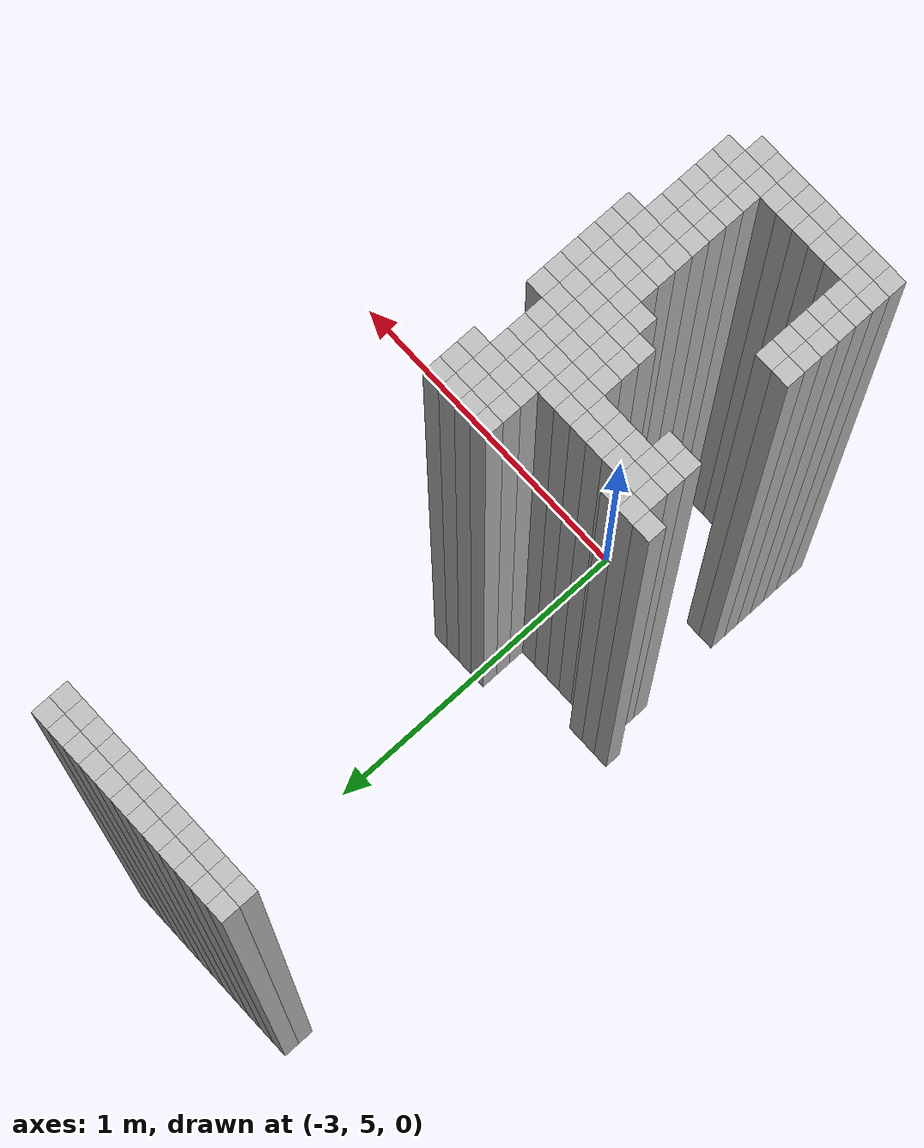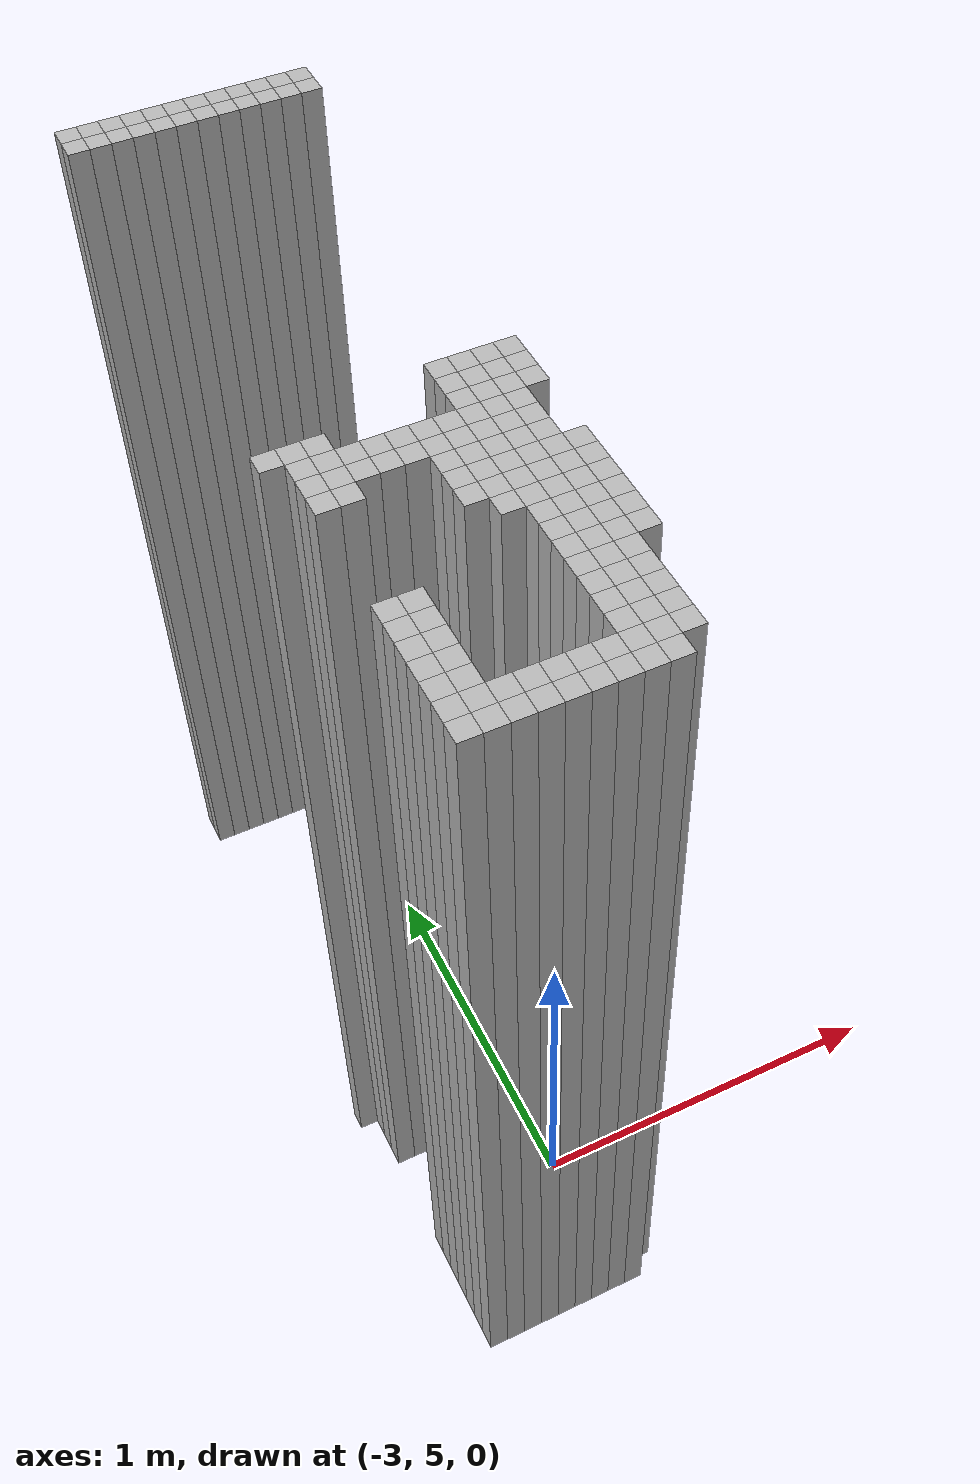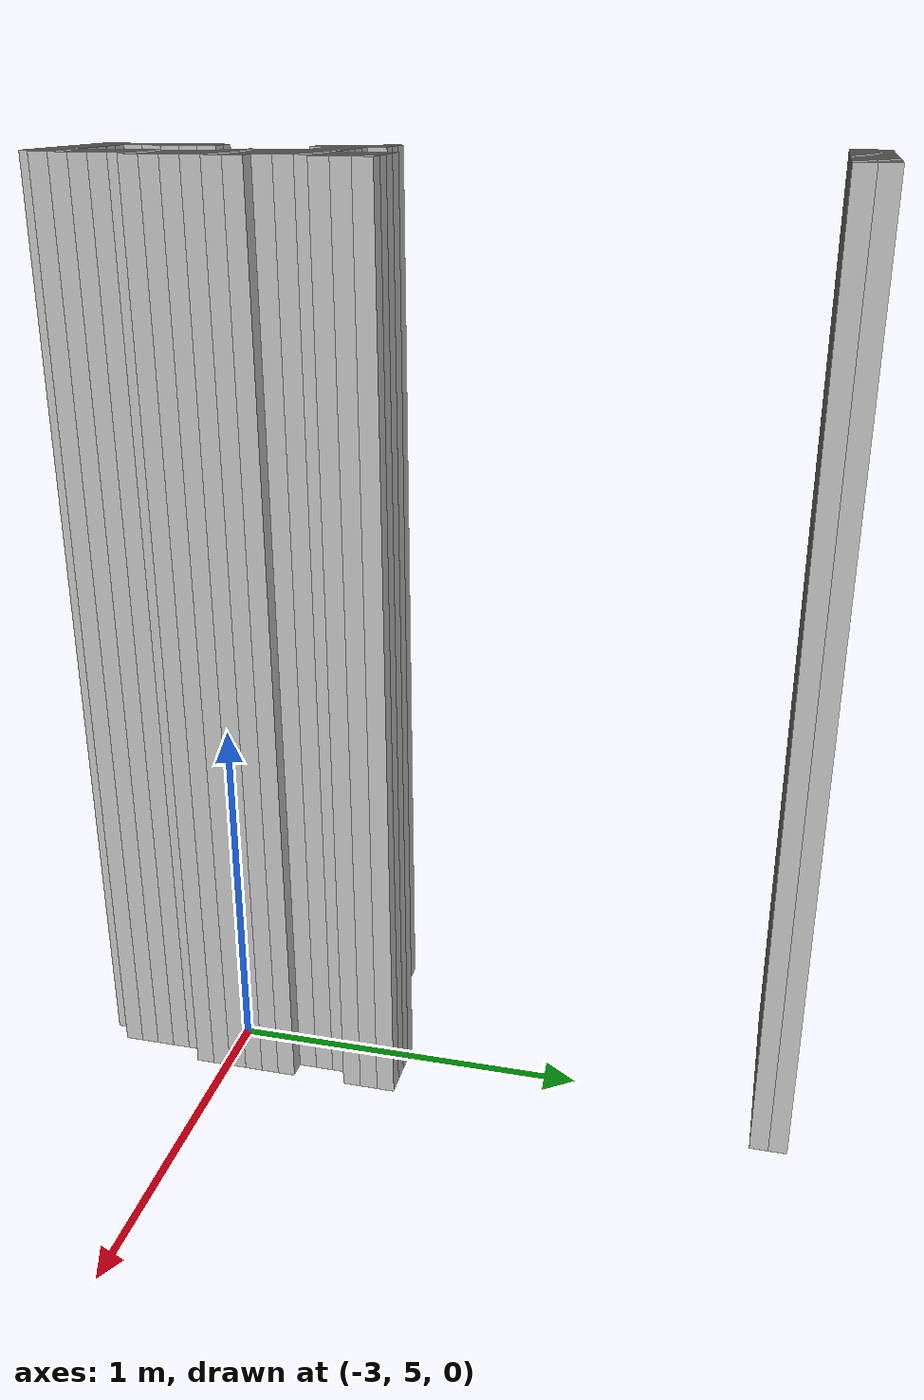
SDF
<sdf version="1.9">
 <world name="map_world">
  <model name="wall_155_22">
   <static>true</static>
   <pose>-3.411 6.580 1.250 0 0 0</pose>
   <link name="link">
    <collision name="collision"><geometry><box><size>0.050 0.050 2.500</size></box></geometry></collision>
    <visual name="visual"><geometry><box><size>0.050 0.050 2.500</size></box></geometry></visual>
   </link>
  </model>
  <model name="wall_156_22">
   <static>true</static>
   <pose>-3.361 6.580 1.250 0 0 0</pose>
   <link name="link">
    <collision name="collision"><geometry><box><size>0.050 0.050 2.500</size></box></geometry></collision>
    <visual name="visual"><geometry><box><size>0.050 0.050 2.500</size></box></geometry></visual>
   </link>
  </model>
  <model name="wall_157_22">
   <static>true</static>
   <pose>-3.311 6.580 1.250 0 0 0</pose>
   <link name="link">
    <collision name="collision"><geometry><box><size>0.050 0.050 2.500</size></box></geometry></collision>
    <visual name="visual"><geometry><box><size>0.050 0.050 2.500</size></box></geometry></visual>
   </link>
  </model>
  <model name="wall_158_22">
   <static>true</static>
   <pose>-3.261 6.580 1.250 0 0 0</pose>
   <link name="link">
    <collision name="collision"><geometry><box><size>0.050 0.050 2.500</size></box></geometry></collision>
    <visual name="visual"><geometry><box><size>0.050 0.050 2.500</size></box></geometry></visual>
   </link>
  </model>
  <model name="wall_159_22">
   <static>true</static>
   <pose>-3.211 6.580 1.250 0 0 0</pose>
   <link name="link">
    <collision name="collision"><geometry><box><size>0.050 0.050 2.500</size></box></geometry></collision>
    <visual name="visual"><geometry><box><size>0.050 0.050 2.500</size></box></geometry></visual>
   </link>
  </model>
  <model name="wall_160_22">
   <static>true</static>
   <pose>-3.161 6.580 1.250 0 0 0</pose>
   <link name="link">
    <collision name="collision"><geometry><box><size>0.050 0.050 2.500</size></box></geometry></collision>
    <visual name="visual"><geometry><box><size>0.050 0.050 2.500</size></box></geometry></visual>
   </link>
  </model>
  <model name="wall_161_22">
   <static>true</static>
   <pose>-3.111 6.580 1.250 0 0 0</pose>
   <link name="link">
    <collision name="collision"><geometry><box><size>0.050 0.050 2.500</size></box></geometry></collision>
    <visual name="visual"><geometry><box><size>0.050 0.050 2.500</size></box></geometry></visual>
   </link>
  </model>
  <model name="wall_162_22">
   <static>true</static>
   <pose>-3.061 6.580 1.250 0 0 0</pose>
   <link name="link">
    <collision name="collision"><geometry><box><size>0.050 0.050 2.500</size></box></geometry></collision>
    <visual name="visual"><geometry><box><size>0.050 0.050 2.500</size></box></geometry></visual>
   </link>
  </model>
  <model name="wall_163_22">
   <static>true</static>
   <pose>-3.011 6.580 1.250 0 0 0</pose>
   <link name="link">
    <collision name="collision"><geometry><box><size>0.050 0.050 2.500</size></box></geometry></collision>
    <visual name="visual"><geometry><box><size>0.050 0.050 2.500</size></box></geometry></visual>
   </link>
  </model>
  <model name="wall_164_22">
   <static>true</static>
   <pose>-2.961 6.580 1.250 0 0 0</pose>
   <link name="link">
    <collision name="collision"><geometry><box><size>0.050 0.050 2.500</size></box></geometry></collision>
    <visual name="visual"><geometry><box><size>0.050 0.050 2.500</size></box></geometry></visual>
   </link>
  </model>
  <model name="wall_165_22">
   <static>true</static>
   <pose>-2.911 6.580 1.250 0 0 0</pose>
   <link name="link">
    <collision name="collision"><geometry><box><size>0.050 0.050 2.500</size></box></geometry></collision>
    <visual name="visual"><geometry><box><size>0.050 0.050 2.500</size></box></geometry></visual>
   </link>
  </model>
  <model name="wall_166_22">
   <static>true</static>
   <pose>-2.861 6.580 1.250 0 0 0</pose>
   <link name="link">
    <collision name="collision"><geometry><box><size>0.050 0.050 2.500</size></box></geometry></collision>
    <visual name="visual"><geometry><box><size>0.050 0.050 2.500</size></box></geometry></visual>
   </link>
  </model>
  <model name="wall_155_23">
   <static>true</static>
   <pose>-3.411 6.530 1.250 0 0 0</pose>
   <link name="link">
    <collision name="collision"><geometry><box><size>0.050 0.050 2.500</size></box></geometry></collision>
    <visual name="visual"><geometry><box><size>0.050 0.050 2.500</size></box></geometry></visual>
   </link>
  </model>
  <model name="wall_156_23">
   <static>true</static>
   <pose>-3.361 6.530 1.250 0 0 0</pose>
   <link name="link">
    <collision name="collision"><geometry><box><size>0.050 0.050 2.500</size></box></geometry></collision>
    <visual name="visual"><geometry><box><size>0.050 0.050 2.500</size></box></geometry></visual>
   </link>
  </model>
  <model name="wall_157_23">
   <static>true</static>
   <pose>-3.311 6.530 1.250 0 0 0</pose>
   <link name="link">
    <collision name="collision"><geometry><box><size>0.050 0.050 2.500</size></box></geometry></collision>
    <visual name="visual"><geometry><box><size>0.050 0.050 2.500</size></box></geometry></visual>
   </link>
  </model>
  <model name="wall_158_23">
   <static>true</static>
   <pose>-3.261 6.530 1.250 0 0 0</pose>
   <link name="link">
    <collision name="collision"><geometry><box><size>0.050 0.050 2.500</size></box></geometry></collision>
    <visual name="visual"><geometry><box><size>0.050 0.050 2.500</size></box></geometry></visual>
   </link>
  </model>
  <model name="wall_159_23">
   <static>true</static>
   <pose>-3.211 6.530 1.250 0 0 0</pose>
   <link name="link">
    <collision name="collision"><geometry><box><size>0.050 0.050 2.500</size></box></geometry></collision>
    <visual name="visual"><geometry><box><size>0.050 0.050 2.500</size></box></geometry></visual>
   </link>
  </model>
  <model name="wall_160_23">
   <static>true</static>
   <pose>-3.161 6.530 1.250 0 0 0</pose>
   <link name="link">
    <collision name="collision"><geometry><box><size>0.050 0.050 2.500</size></box></geometry></collision>
    <visual name="visual"><geometry><box><size>0.050 0.050 2.500</size></box></geometry></visual>
   </link>
  </model>
  <model name="wall_161_23">
   <static>true</static>
   <pose>-3.111 6.530 1.250 0 0 0</pose>
   <link name="link">
    <collision name="collision"><geometry><box><size>0.050 0.050 2.500</size></box></geometry></collision>
    <visual name="visual"><geometry><box><size>0.050 0.050 2.500</size></box></geometry></visual>
   </link>
  </model>
  <model name="wall_162_23">
   <static>true</static>
   <pose>-3.061 6.530 1.250 0 0 0</pose>
   <link name="link">
    <collision name="collision"><geometry><box><size>0.050 0.050 2.500</size></box></geometry></collision>
    <visual name="visual"><geometry><box><size>0.050 0.050 2.500</size></box></geometry></visual>
   </link>
  </model>
  <model name="wall_163_23">
   <static>true</static>
   <pose>-3.011 6.530 1.250 0 0 0</pose>
   <link name="link">
    <collision name="collision"><geometry><box><size>0.050 0.050 2.500</size></box></geometry></collision>
    <visual name="visual"><geometry><box><size>0.050 0.050 2.500</size></box></geometry></visual>
   </link>
  </model>
  <model name="wall_164_23">
   <static>true</static>
   <pose>-2.961 6.530 1.250 0 0 0</pose>
   <link name="link">
    <collision name="collision"><geometry><box><size>0.050 0.050 2.500</size></box></geometry></collision>
    <visual name="visual"><geometry><box><size>0.050 0.050 2.500</size></box></geometry></visual>
   </link>
  </model>
  <model name="wall_165_23">
   <static>true</static>
   <pose>-2.911 6.530 1.250 0 0 0</pose>
   <link name="link">
    <collision name="collision"><geometry><box><size>0.050 0.050 2.500</size></box></geometry></collision>
    <visual name="visual"><geometry><box><size>0.050 0.050 2.500</size></box></geometry></visual>
   </link>
  </model>
  <model name="wall_166_23">
   <static>true</static>
   <pose>-2.861 6.530 1.250 0 0 0</pose>
   <link name="link">
    <collision name="collision"><geometry><box><size>0.050 0.050 2.500</size></box></geometry></collision>
    <visual name="visual"><geometry><box><size>0.050 0.050 2.500</size></box></geometry></visual>
   </link>
  </model>
  <model name="wall_163_44">
   <static>true</static>
   <pose>-3.011 5.480 1.250 0 0 0</pose>
   <link name="link">
    <collision name="collision"><geometry><box><size>0.050 0.050 2.500</size></box></geometry></collision>
    <visual name="visual"><geometry><box><size>0.050 0.050 2.500</size></box></geometry></visual>
   </link>
  </model>
  <model name="wall_164_44">
   <static>true</static>
   <pose>-2.961 5.480 1.250 0 0 0</pose>
   <link name="link">
    <collision name="collision"><geometry><box><size>0.050 0.050 2.500</size></box></geometry></collision>
    <visual name="visual"><geometry><box><size>0.050 0.050 2.500</size></box></geometry></visual>
   </link>
  </model>
  <model name="wall_165_44">
   <static>true</static>
   <pose>-2.911 5.480 1.250 0 0 0</pose>
   <link name="link">
    <collision name="collision"><geometry><box><size>0.050 0.050 2.500</size></box></geometry></collision>
    <visual name="visual"><geometry><box><size>0.050 0.050 2.500</size></box></geometry></visual>
   </link>
  </model>
  <model name="wall_166_44">
   <static>true</static>
   <pose>-2.861 5.480 1.250 0 0 0</pose>
   <link name="link">
    <collision name="collision"><geometry><box><size>0.050 0.050 2.500</size></box></geometry></collision>
    <visual name="visual"><geometry><box><size>0.050 0.050 2.500</size></box></geometry></visual>
   </link>
  </model>
  <model name="wall_163_45">
   <static>true</static>
   <pose>-3.011 5.430 1.250 0 0 0</pose>
   <link name="link">
    <collision name="collision"><geometry><box><size>0.050 0.050 2.500</size></box></geometry></collision>
    <visual name="visual"><geometry><box><size>0.050 0.050 2.500</size></box></geometry></visual>
   </link>
  </model>
  <model name="wall_164_45">
   <static>true</static>
   <pose>-2.961 5.430 1.250 0 0 0</pose>
   <link name="link">
    <collision name="collision"><geometry><box><size>0.050 0.050 2.500</size></box></geometry></collision>
    <visual name="visual"><geometry><box><size>0.050 0.050 2.500</size></box></geometry></visual>
   </link>
  </model>
  <model name="wall_165_45">
   <static>true</static>
   <pose>-2.911 5.430 1.250 0 0 0</pose>
   <link name="link">
    <collision name="collision"><geometry><box><size>0.050 0.050 2.500</size></box></geometry></collision>
    <visual name="visual"><geometry><box><size>0.050 0.050 2.500</size></box></geometry></visual>
   </link>
  </model>
  <model name="wall_166_45">
   <static>true</static>
   <pose>-2.861 5.430 1.250 0 0 0</pose>
   <link name="link">
    <collision name="collision"><geometry><box><size>0.050 0.050 2.500</size></box></geometry></collision>
    <visual name="visual"><geometry><box><size>0.050 0.050 2.500</size></box></geometry></visual>
   </link>
  </model>
  <model name="wall_155_46">
   <static>true</static>
   <pose>-3.411 5.380 1.250 0 0 0</pose>
   <link name="link">
    <collision name="collision"><geometry><box><size>0.050 0.050 2.500</size></box></geometry></collision>
    <visual name="visual"><geometry><box><size>0.050 0.050 2.500</size></box></geometry></visual>
   </link>
  </model>
  <model name="wall_156_46">
   <static>true</static>
   <pose>-3.361 5.380 1.250 0 0 0</pose>
   <link name="link">
    <collision name="collision"><geometry><box><size>0.050 0.050 2.500</size></box></geometry></collision>
    <visual name="visual"><geometry><box><size>0.050 0.050 2.500</size></box></geometry></visual>
   </link>
  </model>
  <model name="wall_157_46">
   <static>true</static>
   <pose>-3.311 5.380 1.250 0 0 0</pose>
   <link name="link">
    <collision name="collision"><geometry><box><size>0.050 0.050 2.500</size></box></geometry></collision>
    <visual name="visual"><geometry><box><size>0.050 0.050 2.500</size></box></geometry></visual>
   </link>
  </model>
  <model name="wall_163_46">
   <static>true</static>
   <pose>-3.011 5.380 1.250 0 0 0</pose>
   <link name="link">
    <collision name="collision"><geometry><box><size>0.050 0.050 2.500</size></box></geometry></collision>
    <visual name="visual"><geometry><box><size>0.050 0.050 2.500</size></box></geometry></visual>
   </link>
  </model>
  <model name="wall_164_46">
   <static>true</static>
   <pose>-2.961 5.380 1.250 0 0 0</pose>
   <link name="link">
    <collision name="collision"><geometry><box><size>0.050 0.050 2.500</size></box></geometry></collision>
    <visual name="visual"><geometry><box><size>0.050 0.050 2.500</size></box></geometry></visual>
   </link>
  </model>
  <model name="wall_165_46">
   <static>true</static>
   <pose>-2.911 5.380 1.250 0 0 0</pose>
   <link name="link">
    <collision name="collision"><geometry><box><size>0.050 0.050 2.500</size></box></geometry></collision>
    <visual name="visual"><geometry><box><size>0.050 0.050 2.500</size></box></geometry></visual>
   </link>
  </model>
  <model name="wall_166_46">
   <static>true</static>
   <pose>-2.861 5.380 1.250 0 0 0</pose>
   <link name="link">
    <collision name="collision"><geometry><box><size>0.050 0.050 2.500</size></box></geometry></collision>
    <visual name="visual"><geometry><box><size>0.050 0.050 2.500</size></box></geometry></visual>
   </link>
  </model>
  <model name="wall_156_47">
   <static>true</static>
   <pose>-3.361 5.330 1.250 0 0 0</pose>
   <link name="link">
    <collision name="collision"><geometry><box><size>0.050 0.050 2.500</size></box></geometry></collision>
    <visual name="visual"><geometry><box><size>0.050 0.050 2.500</size></box></geometry></visual>
   </link>
  </model>
  <model name="wall_157_47">
   <static>true</static>
   <pose>-3.311 5.330 1.250 0 0 0</pose>
   <link name="link">
    <collision name="collision"><geometry><box><size>0.050 0.050 2.500</size></box></geometry></collision>
    <visual name="visual"><geometry><box><size>0.050 0.050 2.500</size></box></geometry></visual>
   </link>
  </model>
  <model name="wall_158_47">
   <static>true</static>
   <pose>-3.261 5.330 1.250 0 0 0</pose>
   <link name="link">
    <collision name="collision"><geometry><box><size>0.050 0.050 2.500</size></box></geometry></collision>
    <visual name="visual"><geometry><box><size>0.050 0.050 2.500</size></box></geometry></visual>
   </link>
  </model>
  <model name="wall_159_47">
   <static>true</static>
   <pose>-3.211 5.330 1.250 0 0 0</pose>
   <link name="link">
    <collision name="collision"><geometry><box><size>0.050 0.050 2.500</size></box></geometry></collision>
    <visual name="visual"><geometry><box><size>0.050 0.050 2.500</size></box></geometry></visual>
   </link>
  </model>
  <model name="wall_160_47">
   <static>true</static>
   <pose>-3.161 5.330 1.250 0 0 0</pose>
   <link name="link">
    <collision name="collision"><geometry><box><size>0.050 0.050 2.500</size></box></geometry></collision>
    <visual name="visual"><geometry><box><size>0.050 0.050 2.500</size></box></geometry></visual>
   </link>
  </model>
  <model name="wall_161_47">
   <static>true</static>
   <pose>-3.111 5.330 1.250 0 0 0</pose>
   <link name="link">
    <collision name="collision"><geometry><box><size>0.050 0.050 2.500</size></box></geometry></collision>
    <visual name="visual"><geometry><box><size>0.050 0.050 2.500</size></box></geometry></visual>
   </link>
  </model>
  <model name="wall_162_47">
   <static>true</static>
   <pose>-3.061 5.330 1.250 0 0 0</pose>
   <link name="link">
    <collision name="collision"><geometry><box><size>0.050 0.050 2.500</size></box></geometry></collision>
    <visual name="visual"><geometry><box><size>0.050 0.050 2.500</size></box></geometry></visual>
   </link>
  </model>
  <model name="wall_163_47">
   <static>true</static>
   <pose>-3.011 5.330 1.250 0 0 0</pose>
   <link name="link">
    <collision name="collision"><geometry><box><size>0.050 0.050 2.500</size></box></geometry></collision>
    <visual name="visual"><geometry><box><size>0.050 0.050 2.500</size></box></geometry></visual>
   </link>
  </model>
  <model name="wall_164_47">
   <static>true</static>
   <pose>-2.961 5.330 1.250 0 0 0</pose>
   <link name="link">
    <collision name="collision"><geometry><box><size>0.050 0.050 2.500</size></box></geometry></collision>
    <visual name="visual"><geometry><box><size>0.050 0.050 2.500</size></box></geometry></visual>
   </link>
  </model>
  <model name="wall_165_47">
   <static>true</static>
   <pose>-2.911 5.330 1.250 0 0 0</pose>
   <link name="link">
    <collision name="collision"><geometry><box><size>0.050 0.050 2.500</size></box></geometry></collision>
    <visual name="visual"><geometry><box><size>0.050 0.050 2.500</size></box></geometry></visual>
   </link>
  </model>
  <model name="wall_156_48">
   <static>true</static>
   <pose>-3.361 5.280 1.250 0 0 0</pose>
   <link name="link">
    <collision name="collision"><geometry><box><size>0.050 0.050 2.500</size></box></geometry></collision>
    <visual name="visual"><geometry><box><size>0.050 0.050 2.500</size></box></geometry></visual>
   </link>
  </model>
  <model name="wall_157_48">
   <static>true</static>
   <pose>-3.311 5.280 1.250 0 0 0</pose>
   <link name="link">
    <collision name="collision"><geometry><box><size>0.050 0.050 2.500</size></box></geometry></collision>
    <visual name="visual"><geometry><box><size>0.050 0.050 2.500</size></box></geometry></visual>
   </link>
  </model>
  <model name="wall_158_48">
   <static>true</static>
   <pose>-3.261 5.280 1.250 0 0 0</pose>
   <link name="link">
    <collision name="collision"><geometry><box><size>0.050 0.050 2.500</size></box></geometry></collision>
    <visual name="visual"><geometry><box><size>0.050 0.050 2.500</size></box></geometry></visual>
   </link>
  </model>
  <model name="wall_159_48">
   <static>true</static>
   <pose>-3.211 5.280 1.250 0 0 0</pose>
   <link name="link">
    <collision name="collision"><geometry><box><size>0.050 0.050 2.500</size></box></geometry></collision>
    <visual name="visual"><geometry><box><size>0.050 0.050 2.500</size></box></geometry></visual>
   </link>
  </model>
  <model name="wall_160_48">
   <static>true</static>
   <pose>-3.161 5.280 1.250 0 0 0</pose>
   <link name="link">
    <collision name="collision"><geometry><box><size>0.050 0.050 2.500</size></box></geometry></collision>
    <visual name="visual"><geometry><box><size>0.050 0.050 2.500</size></box></geometry></visual>
   </link>
  </model>
  <model name="wall_161_48">
   <static>true</static>
   <pose>-3.111 5.280 1.250 0 0 0</pose>
   <link name="link">
    <collision name="collision"><geometry><box><size>0.050 0.050 2.500</size></box></geometry></collision>
    <visual name="visual"><geometry><box><size>0.050 0.050 2.500</size></box></geometry></visual>
   </link>
  </model>
  <model name="wall_162_48">
   <static>true</static>
   <pose>-3.061 5.280 1.250 0 0 0</pose>
   <link name="link">
    <collision name="collision"><geometry><box><size>0.050 0.050 2.500</size></box></geometry></collision>
    <visual name="visual"><geometry><box><size>0.050 0.050 2.500</size></box></geometry></visual>
   </link>
  </model>
  <model name="wall_163_48">
   <static>true</static>
   <pose>-3.011 5.280 1.250 0 0 0</pose>
   <link name="link">
    <collision name="collision"><geometry><box><size>0.050 0.050 2.500</size></box></geometry></collision>
    <visual name="visual"><geometry><box><size>0.050 0.050 2.500</size></box></geometry></visual>
   </link>
  </model>
  <model name="wall_164_48">
   <static>true</static>
   <pose>-2.961 5.280 1.250 0 0 0</pose>
   <link name="link">
    <collision name="collision"><geometry><box><size>0.050 0.050 2.500</size></box></geometry></collision>
    <visual name="visual"><geometry><box><size>0.050 0.050 2.500</size></box></geometry></visual>
   </link>
  </model>
  <model name="wall_165_48">
   <static>true</static>
   <pose>-2.911 5.280 1.250 0 0 0</pose>
   <link name="link">
    <collision name="collision"><geometry><box><size>0.050 0.050 2.500</size></box></geometry></collision>
    <visual name="visual"><geometry><box><size>0.050 0.050 2.500</size></box></geometry></visual>
   </link>
  </model>
  <model name="wall_156_49">
   <static>true</static>
   <pose>-3.361 5.230 1.250 0 0 0</pose>
   <link name="link">
    <collision name="collision"><geometry><box><size>0.050 0.050 2.500</size></box></geometry></collision>
    <visual name="visual"><geometry><box><size>0.050 0.050 2.500</size></box></geometry></visual>
   </link>
  </model>
  <model name="wall_157_49">
   <static>true</static>
   <pose>-3.311 5.230 1.250 0 0 0</pose>
   <link name="link">
    <collision name="collision"><geometry><box><size>0.050 0.050 2.500</size></box></geometry></collision>
    <visual name="visual"><geometry><box><size>0.050 0.050 2.500</size></box></geometry></visual>
   </link>
  </model>
  <model name="wall_161_49">
   <static>true</static>
   <pose>-3.111 5.230 1.250 0 0 0</pose>
   <link name="link">
    <collision name="collision"><geometry><box><size>0.050 0.050 2.500</size></box></geometry></collision>
    <visual name="visual"><geometry><box><size>0.050 0.050 2.500</size></box></geometry></visual>
   </link>
  </model>
  <model name="wall_162_49">
   <static>true</static>
   <pose>-3.061 5.230 1.250 0 0 0</pose>
   <link name="link">
    <collision name="collision"><geometry><box><size>0.050 0.050 2.500</size></box></geometry></collision>
    <visual name="visual"><geometry><box><size>0.050 0.050 2.500</size></box></geometry></visual>
   </link>
  </model>
  <model name="wall_163_49">
   <static>true</static>
   <pose>-3.011 5.230 1.250 0 0 0</pose>
   <link name="link">
    <collision name="collision"><geometry><box><size>0.050 0.050 2.500</size></box></geometry></collision>
    <visual name="visual"><geometry><box><size>0.050 0.050 2.500</size></box></geometry></visual>
   </link>
  </model>
  <model name="wall_164_49">
   <static>true</static>
   <pose>-2.961 5.230 1.250 0 0 0</pose>
   <link name="link">
    <collision name="collision"><geometry><box><size>0.050 0.050 2.500</size></box></geometry></collision>
    <visual name="visual"><geometry><box><size>0.050 0.050 2.500</size></box></geometry></visual>
   </link>
  </model>
  <model name="wall_165_49">
   <static>true</static>
   <pose>-2.911 5.230 1.250 0 0 0</pose>
   <link name="link">
    <collision name="collision"><geometry><box><size>0.050 0.050 2.500</size></box></geometry></collision>
    <visual name="visual"><geometry><box><size>0.050 0.050 2.500</size></box></geometry></visual>
   </link>
  </model>
  <model name="wall_161_50">
   <static>true</static>
   <pose>-3.111 5.180 1.250 0 0 0</pose>
   <link name="link">
    <collision name="collision"><geometry><box><size>0.050 0.050 2.500</size></box></geometry></collision>
    <visual name="visual"><geometry><box><size>0.050 0.050 2.500</size></box></geometry></visual>
   </link>
  </model>
  <model name="wall_162_50">
   <static>true</static>
   <pose>-3.061 5.180 1.250 0 0 0</pose>
   <link name="link">
    <collision name="collision"><geometry><box><size>0.050 0.050 2.500</size></box></geometry></collision>
    <visual name="visual"><geometry><box><size>0.050 0.050 2.500</size></box></geometry></visual>
   </link>
  </model>
  <model name="wall_163_50">
   <static>true</static>
   <pose>-3.011 5.180 1.250 0 0 0</pose>
   <link name="link">
    <collision name="collision"><geometry><box><size>0.050 0.050 2.500</size></box></geometry></collision>
    <visual name="visual"><geometry><box><size>0.050 0.050 2.500</size></box></geometry></visual>
   </link>
  </model>
  <model name="wall_164_50">
   <static>true</static>
   <pose>-2.961 5.180 1.250 0 0 0</pose>
   <link name="link">
    <collision name="collision"><geometry><box><size>0.050 0.050 2.500</size></box></geometry></collision>
    <visual name="visual"><geometry><box><size>0.050 0.050 2.500</size></box></geometry></visual>
   </link>
  </model>
  <model name="wall_165_50">
   <static>true</static>
   <pose>-2.911 5.180 1.250 0 0 0</pose>
   <link name="link">
    <collision name="collision"><geometry><box><size>0.050 0.050 2.500</size></box></geometry></collision>
    <visual name="visual"><geometry><box><size>0.050 0.050 2.500</size></box></geometry></visual>
   </link>
  </model>
  <model name="wall_166_50">
   <static>true</static>
   <pose>-2.861 5.180 1.250 0 0 0</pose>
   <link name="link">
    <collision name="collision"><geometry><box><size>0.050 0.050 2.500</size></box></geometry></collision>
    <visual name="visual"><geometry><box><size>0.050 0.050 2.500</size></box></geometry></visual>
   </link>
  </model>
  <model name="wall_161_51">
   <static>true</static>
   <pose>-3.111 5.130 1.250 0 0 0</pose>
   <link name="link">
    <collision name="collision"><geometry><box><size>0.050 0.050 2.500</size></box></geometry></collision>
    <visual name="visual"><geometry><box><size>0.050 0.050 2.500</size></box></geometry></visual>
   </link>
  </model>
  <model name="wall_162_51">
   <static>true</static>
   <pose>-3.061 5.130 1.250 0 0 0</pose>
   <link name="link">
    <collision name="collision"><geometry><box><size>0.050 0.050 2.500</size></box></geometry></collision>
    <visual name="visual"><geometry><box><size>0.050 0.050 2.500</size></box></geometry></visual>
   </link>
  </model>
  <model name="wall_163_51">
   <static>true</static>
   <pose>-3.011 5.130 1.250 0 0 0</pose>
   <link name="link">
    <collision name="collision"><geometry><box><size>0.050 0.050 2.500</size></box></geometry></collision>
    <visual name="visual"><geometry><box><size>0.050 0.050 2.500</size></box></geometry></visual>
   </link>
  </model>
  <model name="wall_164_51">
   <static>true</static>
   <pose>-2.961 5.130 1.250 0 0 0</pose>
   <link name="link">
    <collision name="collision"><geometry><box><size>0.050 0.050 2.500</size></box></geometry></collision>
    <visual name="visual"><geometry><box><size>0.050 0.050 2.500</size></box></geometry></visual>
   </link>
  </model>
  <model name="wall_165_51">
   <static>true</static>
   <pose>-2.911 5.130 1.250 0 0 0</pose>
   <link name="link">
    <collision name="collision"><geometry><box><size>0.050 0.050 2.500</size></box></geometry></collision>
    <visual name="visual"><geometry><box><size>0.050 0.050 2.500</size></box></geometry></visual>
   </link>
  </model>
  <model name="wall_166_51">
   <static>true</static>
   <pose>-2.861 5.130 1.250 0 0 0</pose>
   <link name="link">
    <collision name="collision"><geometry><box><size>0.050 0.050 2.500</size></box></geometry></collision>
    <visual name="visual"><geometry><box><size>0.050 0.050 2.500</size></box></geometry></visual>
   </link>
  </model>
  <model name="wall_162_52">
   <static>true</static>
   <pose>-3.061 5.080 1.250 0 0 0</pose>
   <link name="link">
    <collision name="collision"><geometry><box><size>0.050 0.050 2.500</size></box></geometry></collision>
    <visual name="visual"><geometry><box><size>0.050 0.050 2.500</size></box></geometry></visual>
   </link>
  </model>
  <model name="wall_163_52">
   <static>true</static>
   <pose>-3.011 5.080 1.250 0 0 0</pose>
   <link name="link">
    <collision name="collision"><geometry><box><size>0.050 0.050 2.500</size></box></geometry></collision>
    <visual name="visual"><geometry><box><size>0.050 0.050 2.500</size></box></geometry></visual>
   </link>
  </model>
  <model name="wall_164_52">
   <static>true</static>
   <pose>-2.961 5.080 1.250 0 0 0</pose>
   <link name="link">
    <collision name="collision"><geometry><box><size>0.050 0.050 2.500</size></box></geometry></collision>
    <visual name="visual"><geometry><box><size>0.050 0.050 2.500</size></box></geometry></visual>
   </link>
  </model>
  <model name="wall_165_52">
   <static>true</static>
   <pose>-2.911 5.080 1.250 0 0 0</pose>
   <link name="link">
    <collision name="collision"><geometry><box><size>0.050 0.050 2.500</size></box></geometry></collision>
    <visual name="visual"><geometry><box><size>0.050 0.050 2.500</size></box></geometry></visual>
   </link>
  </model>
  <model name="wall_166_52">
   <static>true</static>
   <pose>-2.861 5.080 1.250 0 0 0</pose>
   <link name="link">
    <collision name="collision"><geometry><box><size>0.050 0.050 2.500</size></box></geometry></collision>
    <visual name="visual"><geometry><box><size>0.050 0.050 2.500</size></box></geometry></visual>
   </link>
  </model>
  <model name="wall_163_53">
   <static>true</static>
   <pose>-3.011 5.030 1.250 0 0 0</pose>
   <link name="link">
    <collision name="collision"><geometry><box><size>0.050 0.050 2.500</size></box></geometry></collision>
    <visual name="visual"><geometry><box><size>0.050 0.050 2.500</size></box></geometry></visual>
   </link>
  </model>
  <model name="wall_164_53">
   <static>true</static>
   <pose>-2.961 5.030 1.250 0 0 0</pose>
   <link name="link">
    <collision name="collision"><geometry><box><size>0.050 0.050 2.500</size></box></geometry></collision>
    <visual name="visual"><geometry><box><size>0.050 0.050 2.500</size></box></geometry></visual>
   </link>
  </model>
  <model name="wall_165_53">
   <static>true</static>
   <pose>-2.911 5.030 1.250 0 0 0</pose>
   <link name="link">
    <collision name="collision"><geometry><box><size>0.050 0.050 2.500</size></box></geometry></collision>
    <visual name="visual"><geometry><box><size>0.050 0.050 2.500</size></box></geometry></visual>
   </link>
  </model>
  <model name="wall_166_53">
   <static>true</static>
   <pose>-2.861 5.030 1.250 0 0 0</pose>
   <link name="link">
    <collision name="collision"><geometry><box><size>0.050 0.050 2.500</size></box></geometry></collision>
    <visual name="visual"><geometry><box><size>0.050 0.050 2.500</size></box></geometry></visual>
   </link>
  </model>
  <model name="wall_163_54">
   <static>true</static>
   <pose>-3.011 4.980 1.250 0 0 0</pose>
   <link name="link">
    <collision name="collision"><geometry><box><size>0.050 0.050 2.500</size></box></geometry></collision>
    <visual name="visual"><geometry><box><size>0.050 0.050 2.500</size></box></geometry></visual>
   </link>
  </model>
  <model name="wall_164_54">
   <static>true</static>
   <pose>-2.961 4.980 1.250 0 0 0</pose>
   <link name="link">
    <collision name="collision"><geometry><box><size>0.050 0.050 2.500</size></box></geometry></collision>
    <visual name="visual"><geometry><box><size>0.050 0.050 2.500</size></box></geometry></visual>
   </link>
  </model>
  <model name="wall_165_54">
   <static>true</static>
   <pose>-2.911 4.980 1.250 0 0 0</pose>
   <link name="link">
    <collision name="collision"><geometry><box><size>0.050 0.050 2.500</size></box></geometry></collision>
    <visual name="visual"><geometry><box><size>0.050 0.050 2.500</size></box></geometry></visual>
   </link>
  </model>
  <model name="wall_166_54">
   <static>true</static>
   <pose>-2.861 4.980 1.250 0 0 0</pose>
   <link name="link">
    <collision name="collision"><geometry><box><size>0.050 0.050 2.500</size></box></geometry></collision>
    <visual name="visual"><geometry><box><size>0.050 0.050 2.500</size></box></geometry></visual>
   </link>
  </model>
  <model name="wall_156_55">
   <static>true</static>
   <pose>-3.361 4.930 1.250 0 0 0</pose>
   <link name="link">
    <collision name="collision"><geometry><box><size>0.050 0.050 2.500</size></box></geometry></collision>
    <visual name="visual"><geometry><box><size>0.050 0.050 2.500</size></box></geometry></visual>
   </link>
  </model>
  <model name="wall_157_55">
   <static>true</static>
   <pose>-3.311 4.930 1.250 0 0 0</pose>
   <link name="link">
    <collision name="collision"><geometry><box><size>0.050 0.050 2.500</size></box></geometry></collision>
    <visual name="visual"><geometry><box><size>0.050 0.050 2.500</size></box></geometry></visual>
   </link>
  </model>
  <model name="wall_163_55">
   <static>true</static>
   <pose>-3.011 4.930 1.250 0 0 0</pose>
   <link name="link">
    <collision name="collision"><geometry><box><size>0.050 0.050 2.500</size></box></geometry></collision>
    <visual name="visual"><geometry><box><size>0.050 0.050 2.500</size></box></geometry></visual>
   </link>
  </model>
  <model name="wall_164_55">
   <static>true</static>
   <pose>-2.961 4.930 1.250 0 0 0</pose>
   <link name="link">
    <collision name="collision"><geometry><box><size>0.050 0.050 2.500</size></box></geometry></collision>
    <visual name="visual"><geometry><box><size>0.050 0.050 2.500</size></box></geometry></visual>
   </link>
  </model>
  <model name="wall_165_55">
   <static>true</static>
   <pose>-2.911 4.930 1.250 0 0 0</pose>
   <link name="link">
    <collision name="collision"><geometry><box><size>0.050 0.050 2.500</size></box></geometry></collision>
    <visual name="visual"><geometry><box><size>0.050 0.050 2.500</size></box></geometry></visual>
   </link>
  </model>
  <model name="wall_166_55">
   <static>true</static>
   <pose>-2.861 4.930 1.250 0 0 0</pose>
   <link name="link">
    <collision name="collision"><geometry><box><size>0.050 0.050 2.500</size></box></geometry></collision>
    <visual name="visual"><geometry><box><size>0.050 0.050 2.500</size></box></geometry></visual>
   </link>
  </model>
  <model name="wall_156_56">
   <static>true</static>
   <pose>-3.361 4.880 1.250 0 0 0</pose>
   <link name="link">
    <collision name="collision"><geometry><box><size>0.050 0.050 2.500</size></box></geometry></collision>
    <visual name="visual"><geometry><box><size>0.050 0.050 2.500</size></box></geometry></visual>
   </link>
  </model>
  <model name="wall_157_56">
   <static>true</static>
   <pose>-3.311 4.880 1.250 0 0 0</pose>
   <link name="link">
    <collision name="collision"><geometry><box><size>0.050 0.050 2.500</size></box></geometry></collision>
    <visual name="visual"><geometry><box><size>0.050 0.050 2.500</size></box></geometry></visual>
   </link>
  </model>
  <model name="wall_163_56">
   <static>true</static>
   <pose>-3.011 4.880 1.250 0 0 0</pose>
   <link name="link">
    <collision name="collision"><geometry><box><size>0.050 0.050 2.500</size></box></geometry></collision>
    <visual name="visual"><geometry><box><size>0.050 0.050 2.500</size></box></geometry></visual>
   </link>
  </model>
  <model name="wall_164_56">
   <static>true</static>
   <pose>-2.961 4.880 1.250 0 0 0</pose>
   <link name="link">
    <collision name="collision"><geometry><box><size>0.050 0.050 2.500</size></box></geometry></collision>
    <visual name="visual"><geometry><box><size>0.050 0.050 2.500</size></box></geometry></visual>
   </link>
  </model>
  <model name="wall_165_56">
   <static>true</static>
   <pose>-2.911 4.880 1.250 0 0 0</pose>
   <link name="link">
    <collision name="collision"><geometry><box><size>0.050 0.050 2.500</size></box></geometry></collision>
    <visual name="visual"><geometry><box><size>0.050 0.050 2.500</size></box></geometry></visual>
   </link>
  </model>
  <model name="wall_156_57">
   <static>true</static>
   <pose>-3.361 4.830 1.250 0 0 0</pose>
   <link name="link">
    <collision name="collision"><geometry><box><size>0.050 0.050 2.500</size></box></geometry></collision>
    <visual name="visual"><geometry><box><size>0.050 0.050 2.500</size></box></geometry></visual>
   </link>
  </model>
  <model name="wall_157_57">
   <static>true</static>
   <pose>-3.311 4.830 1.250 0 0 0</pose>
   <link name="link">
    <collision name="collision"><geometry><box><size>0.050 0.050 2.500</size></box></geometry></collision>
    <visual name="visual"><geometry><box><size>0.050 0.050 2.500</size></box></geometry></visual>
   </link>
  </model>
  <model name="wall_163_57">
   <static>true</static>
   <pose>-3.011 4.830 1.250 0 0 0</pose>
   <link name="link">
    <collision name="collision"><geometry><box><size>0.050 0.050 2.500</size></box></geometry></collision>
    <visual name="visual"><geometry><box><size>0.050 0.050 2.500</size></box></geometry></visual>
   </link>
  </model>
  <model name="wall_164_57">
   <static>true</static>
   <pose>-2.961 4.830 1.250 0 0 0</pose>
   <link name="link">
    <collision name="collision"><geometry><box><size>0.050 0.050 2.500</size></box></geometry></collision>
    <visual name="visual"><geometry><box><size>0.050 0.050 2.500</size></box></geometry></visual>
   </link>
  </model>
  <model name="wall_165_57">
   <static>true</static>
   <pose>-2.911 4.830 1.250 0 0 0</pose>
   <link name="link">
    <collision name="collision"><geometry><box><size>0.050 0.050 2.500</size></box></geometry></collision>
    <visual name="visual"><geometry><box><size>0.050 0.050 2.500</size></box></geometry></visual>
   </link>
  </model>
  <model name="wall_156_58">
   <static>true</static>
   <pose>-3.361 4.780 1.250 0 0 0</pose>
   <link name="link">
    <collision name="collision"><geometry><box><size>0.050 0.050 2.500</size></box></geometry></collision>
    <visual name="visual"><geometry><box><size>0.050 0.050 2.500</size></box></geometry></visual>
   </link>
  </model>
  <model name="wall_157_58">
   <static>true</static>
   <pose>-3.311 4.780 1.250 0 0 0</pose>
   <link name="link">
    <collision name="collision"><geometry><box><size>0.050 0.050 2.500</size></box></geometry></collision>
    <visual name="visual"><geometry><box><size>0.050 0.050 2.500</size></box></geometry></visual>
   </link>
  </model>
  <model name="wall_163_58">
   <static>true</static>
   <pose>-3.011 4.780 1.250 0 0 0</pose>
   <link name="link">
    <collision name="collision"><geometry><box><size>0.050 0.050 2.500</size></box></geometry></collision>
    <visual name="visual"><geometry><box><size>0.050 0.050 2.500</size></box></geometry></visual>
   </link>
  </model>
  <model name="wall_164_58">
   <static>true</static>
   <pose>-2.961 4.780 1.250 0 0 0</pose>
   <link name="link">
    <collision name="collision"><geometry><box><size>0.050 0.050 2.500</size></box></geometry></collision>
    <visual name="visual"><geometry><box><size>0.050 0.050 2.500</size></box></geometry></visual>
   </link>
  </model>
  <model name="wall_165_58">
   <static>true</static>
   <pose>-2.911 4.780 1.250 0 0 0</pose>
   <link name="link">
    <collision name="collision"><geometry><box><size>0.050 0.050 2.500</size></box></geometry></collision>
    <visual name="visual"><geometry><box><size>0.050 0.050 2.500</size></box></geometry></visual>
   </link>
  </model>
  <model name="wall_156_59">
   <static>true</static>
   <pose>-3.361 4.730 1.250 0 0 0</pose>
   <link name="link">
    <collision name="collision"><geometry><box><size>0.050 0.050 2.500</size></box></geometry></collision>
    <visual name="visual"><geometry><box><size>0.050 0.050 2.500</size></box></geometry></visual>
   </link>
  </model>
  <model name="wall_157_59">
   <static>true</static>
   <pose>-3.311 4.730 1.250 0 0 0</pose>
   <link name="link">
    <collision name="collision"><geometry><box><size>0.050 0.050 2.500</size></box></geometry></collision>
    <visual name="visual"><geometry><box><size>0.050 0.050 2.500</size></box></geometry></visual>
   </link>
  </model>
  <model name="wall_163_59">
   <static>true</static>
   <pose>-3.011 4.730 1.250 0 0 0</pose>
   <link name="link">
    <collision name="collision"><geometry><box><size>0.050 0.050 2.500</size></box></geometry></collision>
    <visual name="visual"><geometry><box><size>0.050 0.050 2.500</size></box></geometry></visual>
   </link>
  </model>
  <model name="wall_164_59">
   <static>true</static>
   <pose>-2.961 4.730 1.250 0 0 0</pose>
   <link name="link">
    <collision name="collision"><geometry><box><size>0.050 0.050 2.500</size></box></geometry></collision>
    <visual name="visual"><geometry><box><size>0.050 0.050 2.500</size></box></geometry></visual>
   </link>
  </model>
  <model name="wall_165_59">
   <static>true</static>
   <pose>-2.911 4.730 1.250 0 0 0</pose>
   <link name="link">
    <collision name="collision"><geometry><box><size>0.050 0.050 2.500</size></box></geometry></collision>
    <visual name="visual"><geometry><box><size>0.050 0.050 2.500</size></box></geometry></visual>
   </link>
  </model>
  <model name="wall_156_60">
   <static>true</static>
   <pose>-3.361 4.680 1.250 0 0 0</pose>
   <link name="link">
    <collision name="collision"><geometry><box><size>0.050 0.050 2.500</size></box></geometry></collision>
    <visual name="visual"><geometry><box><size>0.050 0.050 2.500</size></box></geometry></visual>
   </link>
  </model>
  <model name="wall_157_60">
   <static>true</static>
   <pose>-3.311 4.680 1.250 0 0 0</pose>
   <link name="link">
    <collision name="collision"><geometry><box><size>0.050 0.050 2.500</size></box></geometry></collision>
    <visual name="visual"><geometry><box><size>0.050 0.050 2.500</size></box></geometry></visual>
   </link>
  </model>
  <model name="wall_158_60">
   <static>true</static>
   <pose>-3.261 4.680 1.250 0 0 0</pose>
   <link name="link">
    <collision name="collision"><geometry><box><size>0.050 0.050 2.500</size></box></geometry></collision>
    <visual name="visual"><geometry><box><size>0.050 0.050 2.500</size></box></geometry></visual>
   </link>
  </model>
  <model name="wall_159_60">
   <static>true</static>
   <pose>-3.211 4.680 1.250 0 0 0</pose>
   <link name="link">
    <collision name="collision"><geometry><box><size>0.050 0.050 2.500</size></box></geometry></collision>
    <visual name="visual"><geometry><box><size>0.050 0.050 2.500</size></box></geometry></visual>
   </link>
  </model>
  <model name="wall_160_60">
   <static>true</static>
   <pose>-3.161 4.680 1.250 0 0 0</pose>
   <link name="link">
    <collision name="collision"><geometry><box><size>0.050 0.050 2.500</size></box></geometry></collision>
    <visual name="visual"><geometry><box><size>0.050 0.050 2.500</size></box></geometry></visual>
   </link>
  </model>
  <model name="wall_161_60">
   <static>true</static>
   <pose>-3.111 4.680 1.250 0 0 0</pose>
   <link name="link">
    <collision name="collision"><geometry><box><size>0.050 0.050 2.500</size></box></geometry></collision>
    <visual name="visual"><geometry><box><size>0.050 0.050 2.500</size></box></geometry></visual>
   </link>
  </model>
  <model name="wall_162_60">
   <static>true</static>
   <pose>-3.061 4.680 1.250 0 0 0</pose>
   <link name="link">
    <collision name="collision"><geometry><box><size>0.050 0.050 2.500</size></box></geometry></collision>
    <visual name="visual"><geometry><box><size>0.050 0.050 2.500</size></box></geometry></visual>
   </link>
  </model>
  <model name="wall_163_60">
   <static>true</static>
   <pose>-3.011 4.680 1.250 0 0 0</pose>
   <link name="link">
    <collision name="collision"><geometry><box><size>0.050 0.050 2.500</size></box></geometry></collision>
    <visual name="visual"><geometry><box><size>0.050 0.050 2.500</size></box></geometry></visual>
   </link>
  </model>
  <model name="wall_164_60">
   <static>true</static>
   <pose>-2.961 4.680 1.250 0 0 0</pose>
   <link name="link">
    <collision name="collision"><geometry><box><size>0.050 0.050 2.500</size></box></geometry></collision>
    <visual name="visual"><geometry><box><size>0.050 0.050 2.500</size></box></geometry></visual>
   </link>
  </model>
  <model name="wall_165_60">
   <static>true</static>
   <pose>-2.911 4.680 1.250 0 0 0</pose>
   <link name="link">
    <collision name="collision"><geometry><box><size>0.050 0.050 2.500</size></box></geometry></collision>
    <visual name="visual"><geometry><box><size>0.050 0.050 2.500</size></box></geometry></visual>
   </link>
  </model>
  <model name="wall_156_61">
   <static>true</static>
   <pose>-3.361 4.630 1.250 0 0 0</pose>
   <link name="link">
    <collision name="collision"><geometry><box><size>0.050 0.050 2.500</size></box></geometry></collision>
    <visual name="visual"><geometry><box><size>0.050 0.050 2.500</size></box></geometry></visual>
   </link>
  </model>
  <model name="wall_157_61">
   <static>true</static>
   <pose>-3.311 4.630 1.250 0 0 0</pose>
   <link name="link">
    <collision name="collision"><geometry><box><size>0.050 0.050 2.500</size></box></geometry></collision>
    <visual name="visual"><geometry><box><size>0.050 0.050 2.500</size></box></geometry></visual>
   </link>
  </model>
  <model name="wall_158_61">
   <static>true</static>
   <pose>-3.261 4.630 1.250 0 0 0</pose>
   <link name="link">
    <collision name="collision"><geometry><box><size>0.050 0.050 2.500</size></box></geometry></collision>
    <visual name="visual"><geometry><box><size>0.050 0.050 2.500</size></box></geometry></visual>
   </link>
  </model>
  <model name="wall_159_61">
   <static>true</static>
   <pose>-3.211 4.630 1.250 0 0 0</pose>
   <link name="link">
    <collision name="collision"><geometry><box><size>0.050 0.050 2.500</size></box></geometry></collision>
    <visual name="visual"><geometry><box><size>0.050 0.050 2.500</size></box></geometry></visual>
   </link>
  </model>
  <model name="wall_160_61">
   <static>true</static>
   <pose>-3.161 4.630 1.250 0 0 0</pose>
   <link name="link">
    <collision name="collision"><geometry><box><size>0.050 0.050 2.500</size></box></geometry></collision>
    <visual name="visual"><geometry><box><size>0.050 0.050 2.500</size></box></geometry></visual>
   </link>
  </model>
  <model name="wall_161_61">
   <static>true</static>
   <pose>-3.111 4.630 1.250 0 0 0</pose>
   <link name="link">
    <collision name="collision"><geometry><box><size>0.050 0.050 2.500</size></box></geometry></collision>
    <visual name="visual"><geometry><box><size>0.050 0.050 2.500</size></box></geometry></visual>
   </link>
  </model>
  <model name="wall_162_61">
   <static>true</static>
   <pose>-3.061 4.630 1.250 0 0 0</pose>
   <link name="link">
    <collision name="collision"><geometry><box><size>0.050 0.050 2.500</size></box></geometry></collision>
    <visual name="visual"><geometry><box><size>0.050 0.050 2.500</size></box></geometry></visual>
   </link>
  </model>
  <model name="wall_163_61">
   <static>true</static>
   <pose>-3.011 4.630 1.250 0 0 0</pose>
   <link name="link">
    <collision name="collision"><geometry><box><size>0.050 0.050 2.500</size></box></geometry></collision>
    <visual name="visual"><geometry><box><size>0.050 0.050 2.500</size></box></geometry></visual>
   </link>
  </model>
  <model name="wall_164_61">
   <static>true</static>
   <pose>-2.961 4.630 1.250 0 0 0</pose>
   <link name="link">
    <collision name="collision"><geometry><box><size>0.050 0.050 2.500</size></box></geometry></collision>
    <visual name="visual"><geometry><box><size>0.050 0.050 2.500</size></box></geometry></visual>
   </link>
  </model>
 </world>
</sdf>
